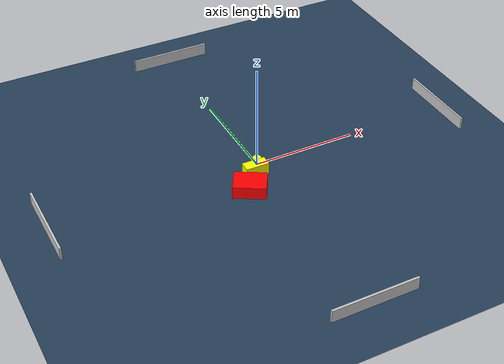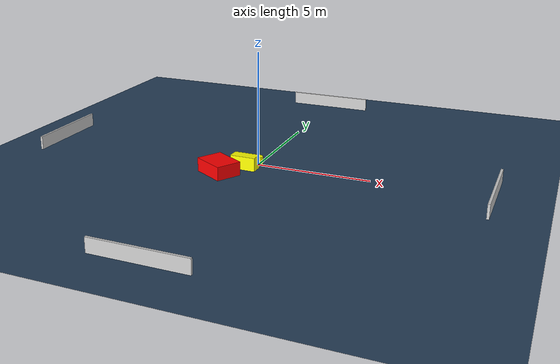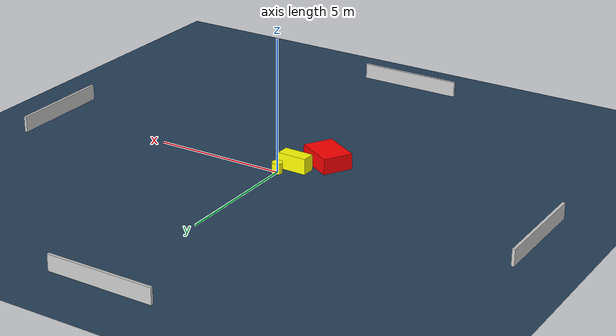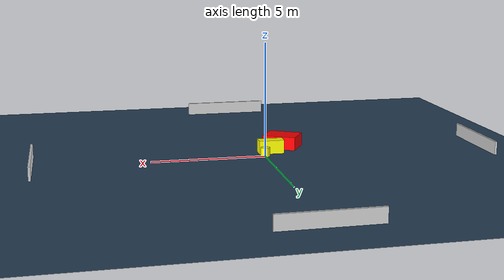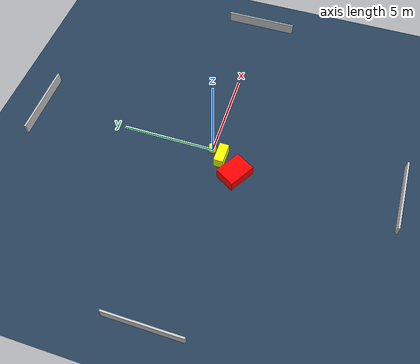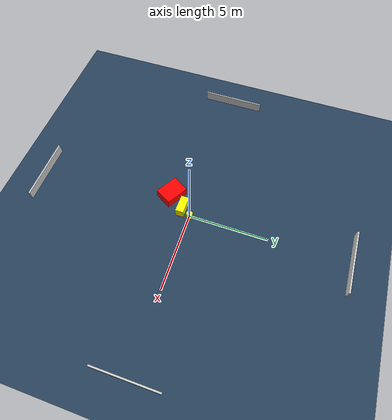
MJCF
<?xml version="1.0" ?>
<mujoco model="generated_environment">
  <option timestep="0.01" integrator="RK4" cone="elliptic"/>
  <default>
    <geom density="1"/>
  </default>
  <asset>
    <texture builtin="gradient" height="3072" name="skybox" rgb1="0.3 0.5 0.7" rgb2="0 0 0" type="skybox" width="512"/>
    <texture builtin="checker" height="300" name="groundplane" rgb1="0.2 0.3 0.4" rgb2="0.1 0.2 0.3" type="2d" width="300"/>
    <material name="groundplane" reflectance="0.2" texrepeat="5 5" texture="groundplane"/>
  </asset>
  <worldbody>
    <light dir="0 0 -1" directional="true" pos="0 0 1.5"/>
    <geom condim="3" friction="0.5 0.005 0.001" material="groundplane" name="floor" pos="0 0 0" size="0 0 0.05" type="plane"/>
    <body name="walls">
      <geom name="wall_1" condim="4" pos="-10.0 0.0 0.3" rgba="0.800000011920929 0.800000011920929 0.800000011920929 1.0" size="0.05 2.0 0.3" type="box"/>
      <geom name="wall_2" condim="4" pos="10.0 0.0 0.3" rgba="0.800000011920929 0.800000011920929 0.800000011920929 1.0" size="0.05 2.0 0.3" type="box"/>
      <geom name="wall_3" condim="4" pos="0.0 -10.0 0.3" rgba="0.800000011920929 0.800000011920929 0.800000011920929 1.0" size="2.0 0.05 0.3" type="box"/>
      <geom name="wall_4" condim="4" pos="0.0 10.0 0.3" rgba="0.800000011920929 0.800000011920929 0.800000011920929 1.0" size="2.0 0.05 0.3" type="box"/>
    </body>
    <body name="robot">
      <joint name="joint_x" type="slide" pos="0 0 0" axis="1 0 0"/>
      <joint name="joint_y" type="slide" pos="0 0 0" axis="0 1 0"/>
      <geom name="robot" type="cylinder" pos="0.0 0.0 0.2" size="0.2 0.2 0.0" mass="5.0" friction="1.0 0.005 0.0001" condim="4" rgba="1.0 1.0 0.0 1.0"/>
    </body>
    <body name="obstacle_1_movable">
      <geom name="obstacle_1_movable" condim="4" pos="-0.3817159129600487 -0.6001971013557913 0.3" euler="0 0 269.07871590488674" friction="0.0 0.005 0.001" rgba="1.0 1.0 0.0 1.0" size="0.25746349967678983 0.5591933544082957 0.3" type="box" mass="0.1"/>
      <joint type="free"/>
    </body>
    <body name="obstacle_2_static">
      <geom name="obstacle_2_static" condim="4" pos="-1.1509398934362476 -1.567796047017834 0.3" euler="0 0 329.7202940136538" friction="0.0 0.005 0.001" rgba="1.0 0.0 0.0 1.0" size="0.7555905308572446 0.5718703958557305 0.3" type="box"/>
    </body>
  </worldbody>
  <actuator>
    <motor name="actuator_x" joint="joint_x" gear="1" ctrlrange="-1 1"/>
    <motor name="actuator_y" joint="joint_y" gear="1" ctrlrange="-1 1"/>
  </actuator>
</mujoco>
